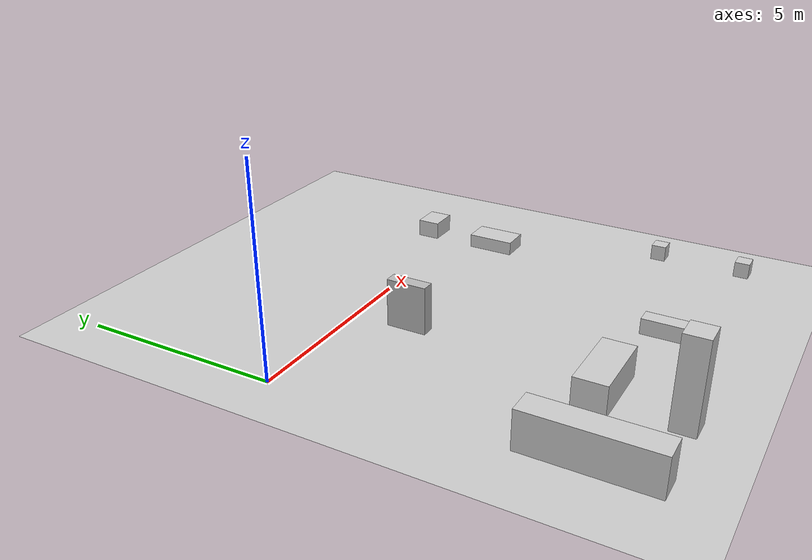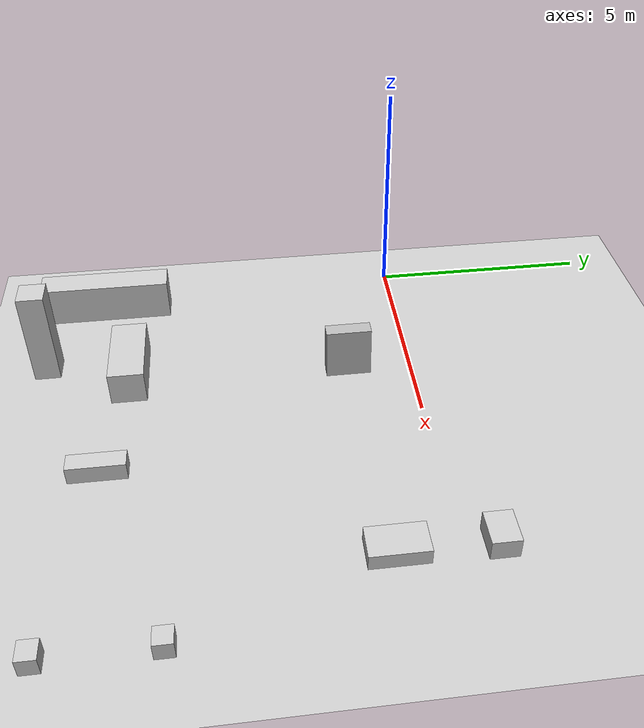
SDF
<sdf version="1.6">
 <world name="rwc2013">
  <light name="sun" type="directional">
   <direction>0.5 0.1 -0.9</direction>
   <pose>0 0 10 0 0 0</pose>
   <specular>0.2 0.2 0.2 1</specular>
   <diffuse>0.8 0.8 0.8 1</diffuse>
   <attenuation>
    <range>1000</range>
    <quadratic>0.001</quadratic>
    <constant>0.9</constant>
    <linear>0.01</linear>
   </attenuation>
  </light>
  <include><name>floor</name><uri>model://ground_plane</uri></include>
  <include>
   <pose>3.105 -6.331 0 0 0 0</pose>
   <name>kitchen_table</name>
   <uri>model://rwc2013/kitchen_table</uri>
  </include>
  <include>
   <pose>0.654 -6.9815 0 0 0 0</pose>
   <name>kitchen_countertop</name>
   <uri>model://rwc2013/kitchen_countertop</uri>
  </include>
  <include>
   <pose>2.705 -8.1965 0 0 0 0</pose>
   <name>kitchen_cabinet</name>
   <uri>model://rwc2013/kitchen_cabinet</uri>
  </include>
  <include>
   <pose>6.078 -6.841 0 0 0 0</pose>
   <name>bedroom_cabinet</name>
   <uri>model://rwc2013/bedroom_cabinet</uri>
  </include>
  <include>
   <pose>10.223 -5.419 0 0 0 0</pose>
   <name>nightstand1</name>
   <uri>model://rwc2013/nightstand1</uri>
  </include>
  <include>
   <pose>10.2305 -7.6205 0 0 0 0</pose>
   <name>nightstand2</name>
   <uri>model://rwc2013/nightstand2</uri>
  </include>
  <include>
   <pose>8.718 -1.2 0 0 0 0</pose>
   <name>couch_table</name>
   <uri>model://rwc2013/couch_table</uri>
  </include>
  <include><pose>8.748 0.7515 0 0 0 0</pose><name>armchair</name><uri>model://rwc2013/armchair</uri></include>
  <include>
   <pose>3.5355 -1.428 0 0 0 0</pose>
   <name>book_case</name>
   <uri>model://rwc2013/book_case</uri>
  </include>
  <physics type="ode">
   <real_time_update_rate>333.0</real_time_update_rate>
   <max_step_size>0.003</max_step_size>
   <ode><constraints><cfm>0.0001</cfm></constraints><solver><type>quick</type><iters>100</iters></solver></ode>
  </physics>
 </world>
</sdf>

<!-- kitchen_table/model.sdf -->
<sdf version="1.6">
  <model name="rwc2013/kitchen_table">
    <link name="1_link">
      <collision name="1_col">
        <geometry>
          <box>
            <size>1.8 0.78 0.76</size>
          </box>
        </geometry>
      </collision>
      <visual name="1_vis">
        <geometry>
          <box>
            <size>1.8 0.78 0.76</size>
          </box>
        </geometry>
        <material>
          <ambient>0.8 0.8 0.8 1</ambient>
        </material>
      </visual>
      <pose>0.0 0.0 0.38 0 0 0</pose>
    </link>
    <static>true</static>
  </model>
</sdf>

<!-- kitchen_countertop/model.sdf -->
<sdf version="1.6">
  <model name="rwc2013/kitchen_countertop">
    <link name="1_link">
      <collision name="1_col">
        <geometry>
          <box>
            <size>0.642 2.989 0.95</size>
          </box>
        </geometry>
      </collision>
      <visual name="1_vis">
        <geometry>
          <box>
            <size>0.642 2.989 0.95</size>
          </box>
        </geometry>
        <material>
          <ambient>0.8 0.8 0.8 1</ambient>
        </material>
      </visual>
      <pose>0.0 0.0 0.475 0 0 0</pose>
    </link>
    <static>true</static>
  </model>
</sdf>

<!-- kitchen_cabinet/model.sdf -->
<sdf version="1.6">
  <model name="rwc2013/kitchen_cabinet">
    <link name="1_link">
      <collision name="1_col">
        <geometry>
          <box>
            <size>0.59 0.57 2.2</size>
          </box>
        </geometry>
      </collision>
      <visual name="1_vis">
        <geometry>
          <box>
            <size>0.59 0.57 2.2</size>
          </box>
        </geometry>
        <material>
          <ambient>0.8 0.8 0.8 1</ambient>
        </material>
      </visual>
      <pose>0.0 0.0 1.1 0 0 0</pose>
    </link>
    <static>true</static>
  </model>
</sdf>

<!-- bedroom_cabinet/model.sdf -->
<sdf version="1.6">
  <model name="rwc2013/bedroom_cabinet">
    <link name="1_link">
      <collision name="1_col">
        <geometry>
          <box>
            <size>0.406 1.214 0.4</size>
          </box>
        </geometry>
      </collision>
      <visual name="1_vis">
        <geometry>
          <box>
            <size>0.406 1.214 0.4</size>
          </box>
        </geometry>
        <material>
          <ambient>0.8 0.8 0.8 1</ambient>
        </material>
      </visual>
      <pose>0.0 0.0 0.2 0 0 0</pose>
    </link>
    <static>true</static>
  </model>
</sdf>

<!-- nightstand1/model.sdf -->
<sdf version="1.6">
  <model name="rwc2013/nightstand1">
    <link name="1_link">
      <collision name="1_col">
        <geometry>
          <box>
            <size>0.38 0.376 0.4</size>
          </box>
        </geometry>
      </collision>
      <visual name="1_vis">
        <geometry>
          <box>
            <size>0.38 0.376 0.4</size>
          </box>
        </geometry>
        <material>
          <ambient>0.8 0.8 0.8 1</ambient>
        </material>
      </visual>
      <pose>0.0 0.0 0.2 0 0 0</pose>
    </link>
    <static>true</static>
  </model>
</sdf>

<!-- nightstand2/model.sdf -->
<sdf version="1.6">
  <model name="rwc2013/nightstand2">
    <link name="1_link">
      <collision name="1_col">
        <geometry>
          <box>
            <size>0.411 0.377 0.4</size>
          </box>
        </geometry>
      </collision>
      <visual name="1_vis">
        <geometry>
          <box>
            <size>0.411 0.377 0.4</size>
          </box>
        </geometry>
        <material>
          <ambient>0.8 0.8 0.8 1</ambient>
        </material>
      </visual>
      <pose>0.0 0.0 0.2 0 0 0</pose>
    </link>
    <static>true</static>
  </model>
</sdf>

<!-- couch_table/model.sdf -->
<sdf version="1.6">
  <model name="rwc2013/couch_table">
    <link name="1_link">
      <collision name="1_col">
        <geometry>
          <box>
            <size>0.7 1.2 0.35</size>
          </box>
        </geometry>
      </collision>
      <visual name="1_vis">
        <geometry>
          <box>
            <size>0.7 1.2 0.35</size>
          </box>
        </geometry>
        <material>
          <ambient>0.8 0.8 0.8 1</ambient>
        </material>
      </visual>
      <pose>0.0 0.0 0.175 0 0 0</pose>
    </link>
    <static>true</static>
  </model>
</sdf>

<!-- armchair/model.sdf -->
<sdf version="1.6">
  <model name="rwc2013/armchair">
    <link name="1_link">
      <collision name="1_col">
        <geometry>
          <box>
            <size>0.74 0.583 0.45</size>
          </box>
        </geometry>
      </collision>
      <visual name="1_vis">
        <geometry>
          <box>
            <size>0.74 0.583 0.45</size>
          </box>
        </geometry>
        <material>
          <ambient>0.8 0.8 0.8 1</ambient>
        </material>
      </visual>
      <pose>0.0 0.0 0.225 0 0 0</pose>
    </link>
    <static>true</static>
  </model>
</sdf>

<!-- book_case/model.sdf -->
<sdf version="1.6">
  <model name="rwc2013/book_case">
    <link name="1_link">
      <collision name="1_col">
        <geometry>
          <box>
            <size>0.32 1.0 1.2</size>
          </box>
        </geometry>
      </collision>
      <visual name="1_vis">
        <geometry>
          <box>
            <size>0.32 1.0 1.2</size>
          </box>
        </geometry>
      </visual>
      <pose>0.0 0.0 0.6 0 0 0</pose>
    </link>
    <static>true</static>
  </model>
</sdf>
